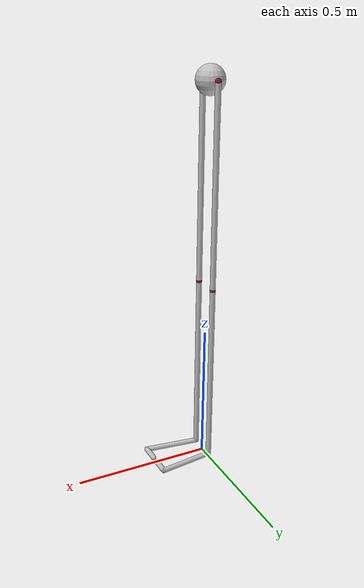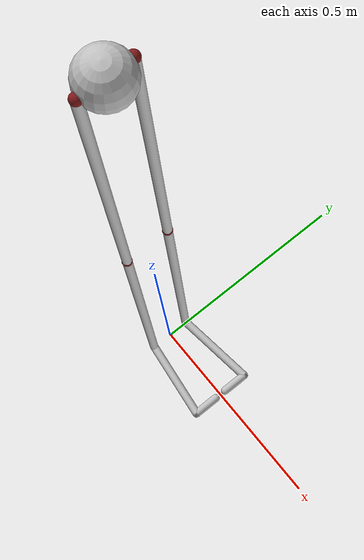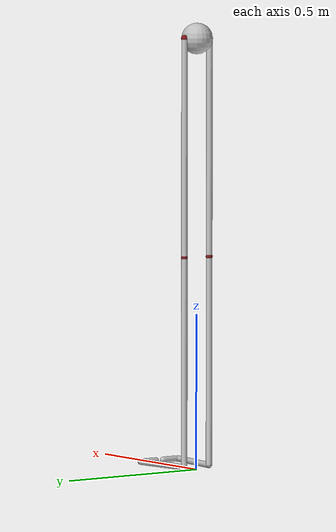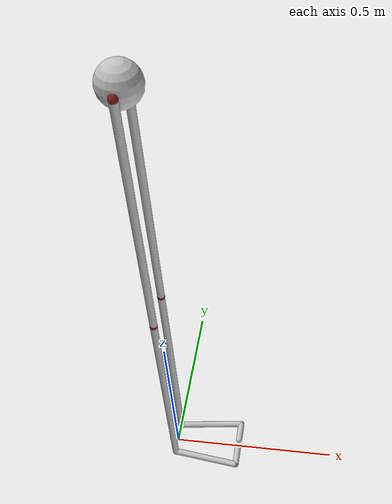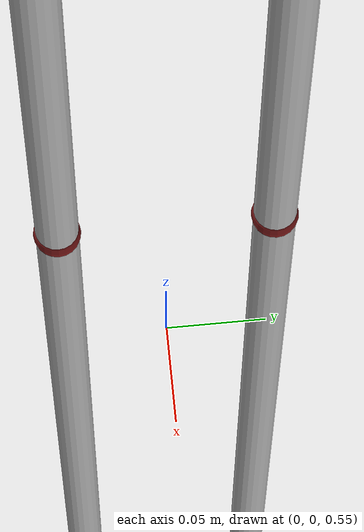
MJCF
<?xml version="1.0" ?>
<mujoco>
    <default>
        <joint armature="0.0" damping="0.01" type="hinge" range="-150 0" axis="0 -1 0"/>
        <geom condim="3" friction="1.5 1.0 1.0" margin="0.001"/>
        <default class="motor">
            <cylinder gear="100" ctrllimited="true" ctrlrange="-1 1"/>
        </default>
    </default>
    <worldbody>
        <body name="Base" pos="0.0 0.0 1.382828770996244">
            <joint type="free"/>
            <geom type="sphere" rgba="0.75 0.75 0.75 1.0" size="0.05" mass="0.02"/>
            <body name="rod_0.1" pos="0.0 -0.05 -0.34916235605962437">
                <geom name="geom_0.1" type="capsule" fromto="-0.0 -0.0 0.34916235605962437 0.0 0.0 -0.34916235605962437" size="0.01" rgba="0.75 0.75 0.75 1.0" density="159.15494309189535"/>
                <site name="site_0.1" pos="0 0 0" quat="0.7071067811865476 -0.0 0.7071067811865476 0.0"/>
                <joint name="joint_Base=rod_0.1" pos="-0.0 -0.0 0.34916235605962437" range="-45 45"/>
                <body name="p0" pos="-0.0 -0.0 0.34916235605962437">
                    <geom type="sphere" size="0.011000000000000001" rgba="0.5 0.1 0.1 1.0" density="23873.2414637843"/>
                    <site name="p0"/>
                </body>
                <body name="rod_1.2" pos="0.0 0.0 -0.6856643854981219">
                    <geom name="geom_1.2" type="capsule" fromto="-0.0 -0.0 0.33650202943849755 0.0 0.0 -0.33650202943849755" size="0.01" rgba="0.75 0.75 0.75 1.0" density="159.15494309189535"/>
                    <site name="site_1.2" pos="0 0 0" quat="0.7071067811865476 -0.0 0.7071067811865476 0.0"/>
                    <joint name="joint_rod_0.1=rod_1.2" pos="-0.0 -0.0 0.33650202943849755" range="-150 0"/>
                    <body name="p1" pos="-0.0 -0.0 0.33650202943849755">
                        <geom type="sphere" size="0.011000000000000001" rgba="0.5 0.1 0.1 1.0" density="23873.2414637843"/>
                        <site name="p1"/>
                    </body>
                    <body name="rod_2.3" pos="0.09979061379844618 -0.012500000000000004 -0.33650202943849755">
                        <geom name="geom_2.3" type="capsule" fromto="-0.09979061379844618 0.012500000000000004 -0.0 0.09979061379844618 -0.012500000000000004 0.0" size="0.01" rgba="0.75 0.75 0.75 1.0" density="159.15494309189535"/>
                        <site name="site_2.3" pos="0 0 0" quat="0.9980595706384299 0.0 0.0 -0.06226631077101823"/>
                        <body name="rod_3.4" pos="0.09979061379844618 0.017499999999999995 0.0">
                            <geom name="geom_3.4" type="capsule" fromto="-0.0 -0.03 -0.0 0.0 0.03 0.0" size="0.01" rgba="0.75 0.75 0.75 1.0" density="159.15494309189535"/>
                            <site name="site_3.4" pos="0 0 0" quat="0.7071067811865476 0.0 0.0 0.7071067811865476"/>
                        </body>
                    </body>
                </body>
            </body>
            <body name="rod_5.6" pos="0.0 0.05 -0.34916235605962437">
                <geom name="geom_5.6" type="capsule" fromto="-0.0 -0.0 0.34916235605962437 0.0 0.0 -0.34916235605962437" size="0.01" rgba="0.75 0.75 0.75 1.0" density="159.15494309189535"/>
                <site name="site_5.6" pos="0 0 0" quat="0.7071067811865476 -0.0 0.7071067811865476 0.0"/>
                <joint name="joint_Base=rod_5.6" pos="-0.0 -0.0 0.34916235605962437" range="-45 45"/>
                <body name="p5" pos="-0.0 -0.0 0.34916235605962437">
                    <geom type="sphere" size="0.011000000000000001" rgba="0.5 0.1 0.1 1.0" density="23873.2414637843"/>
                    <site name="p5"/>
                </body>
                <body name="rod_6.7" pos="0.0 0.0 -0.6856643854981219">
                    <geom name="geom_6.7" type="capsule" fromto="-0.0 -0.0 0.33650202943849755 0.0 0.0 -0.33650202943849755" size="0.01" rgba="0.75 0.75 0.75 1.0" density="159.15494309189535"/>
                    <site name="site_6.7" pos="0 0 0" quat="0.7071067811865476 -0.0 0.7071067811865476 0.0"/>
                    <joint name="joint_rod_5.6=rod_6.7" pos="-0.0 -0.0 0.33650202943849755" range="-150 0"/>
                    <body name="p6" pos="-0.0 -0.0 0.33650202943849755">
                        <geom type="sphere" size="0.011000000000000001" rgba="0.5 0.1 0.1 1.0" density="23873.2414637843"/>
                        <site name="p6"/>
                    </body>
                    <body name="rod_7.8" pos="0.09979061379844618 0.012500000000000004 -0.33650202943849755">
                        <geom name="geom_7.8" type="capsule" fromto="-0.09979061379844618 -0.012500000000000004 -0.0 0.09979061379844618 0.012500000000000004 0.0" size="0.01" rgba="0.75 0.75 0.75 1.0" density="159.15494309189535"/>
                        <site name="site_7.8" pos="0 0 0" quat="0.9980595706384299 0.0 0.0 0.06226631077101823"/>
                        <body name="rod_8.9" pos="0.09979061379844618 -0.017499999999999995 0.0">
                            <geom name="geom_8.9" type="capsule" fromto="-0.0 0.03 -0.0 0.0 -0.03 0.0" size="0.01" rgba="0.75 0.75 0.75 1.0" density="159.15494309189535"/>
                            <site name="site_8.9" pos="0 0 0" quat="0.7071067811865476 0.0 0.0 -0.7071067811865476"/>
                        </body>
                    </body>
                </body>
            </body>
        </body>
    </worldbody>
    <actuator/>
    <sensor>
        <accelerometer site="site_0.1"/>
        <gyro site="site_0.1"/>
        <magnetometer site="site_0.1"/>
        <accelerometer site="site_1.2"/>
        <gyro site="site_1.2"/>
        <magnetometer site="site_1.2"/>
        <accelerometer site="site_2.3"/>
        <gyro site="site_2.3"/>
        <magnetometer site="site_2.3"/>
        <accelerometer site="site_3.4"/>
        <gyro site="site_3.4"/>
        <magnetometer site="site_3.4"/>
        <accelerometer site="site_5.6"/>
        <gyro site="site_5.6"/>
        <magnetometer site="site_5.6"/>
        <accelerometer site="site_6.7"/>
        <gyro site="site_6.7"/>
        <magnetometer site="site_6.7"/>
        <accelerometer site="site_7.8"/>
        <gyro site="site_7.8"/>
        <magnetometer site="site_7.8"/>
        <accelerometer site="site_8.9"/>
        <gyro site="site_8.9"/>
        <magnetometer site="site_8.9"/>
    </sensor>
    <contact>
        <pair geom1="geom_0.1" geom2="floor"/>
        <pair geom1="geom_1.2" geom2="floor"/>
        <pair geom1="geom_2.3" geom2="floor"/>
        <pair geom1="geom_3.4" geom2="floor"/>
        <pair geom1="geom_5.6" geom2="floor"/>
        <pair geom1="geom_6.7" geom2="floor"/>
        <pair geom1="geom_7.8" geom2="floor"/>
        <pair geom1="geom_8.9" geom2="floor"/>
    </contact>
</mujoco>
